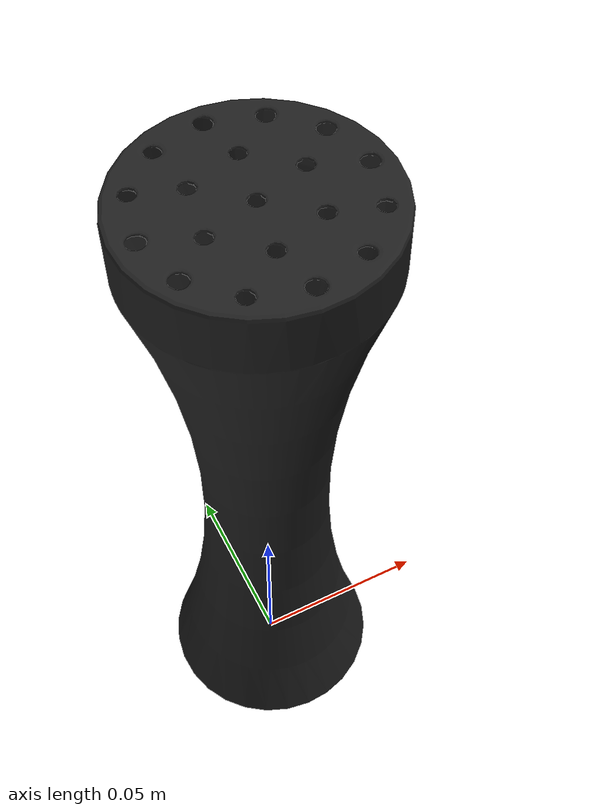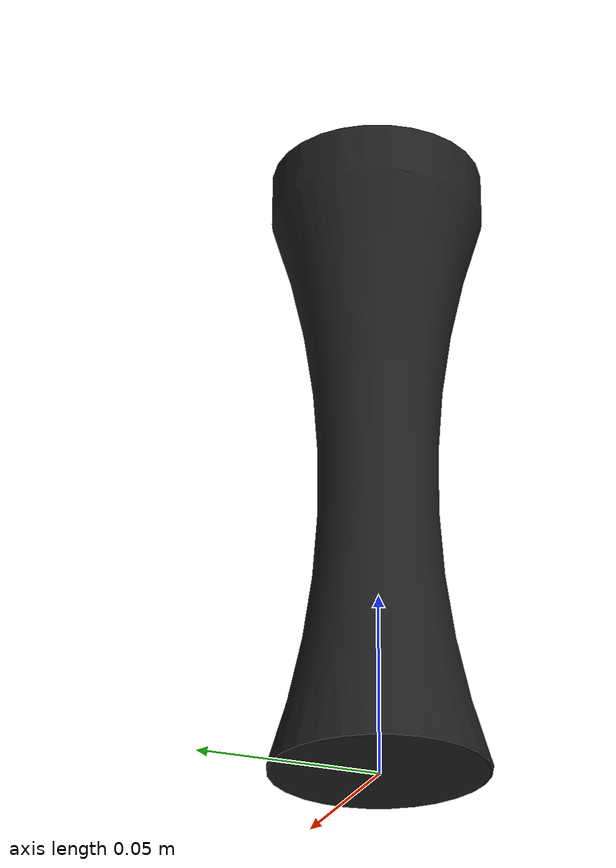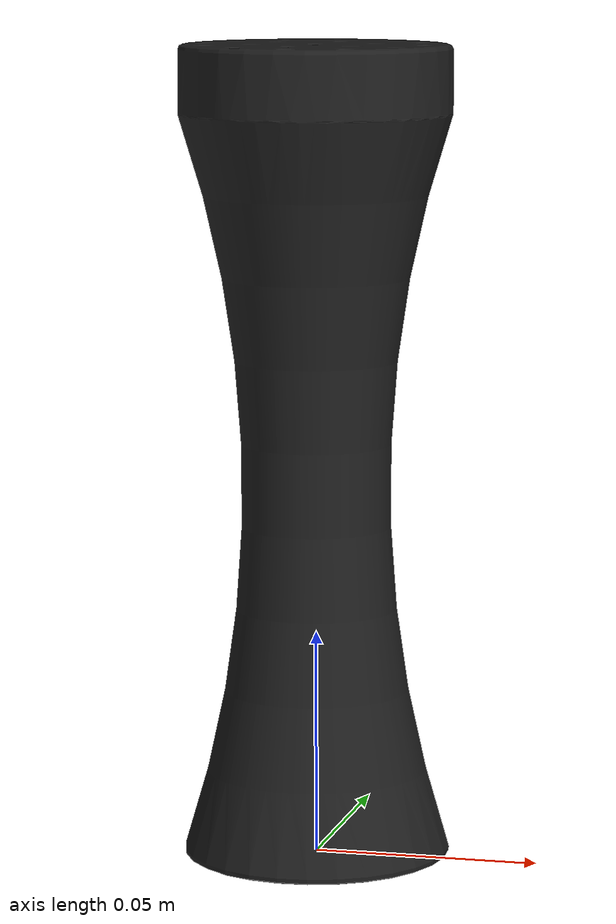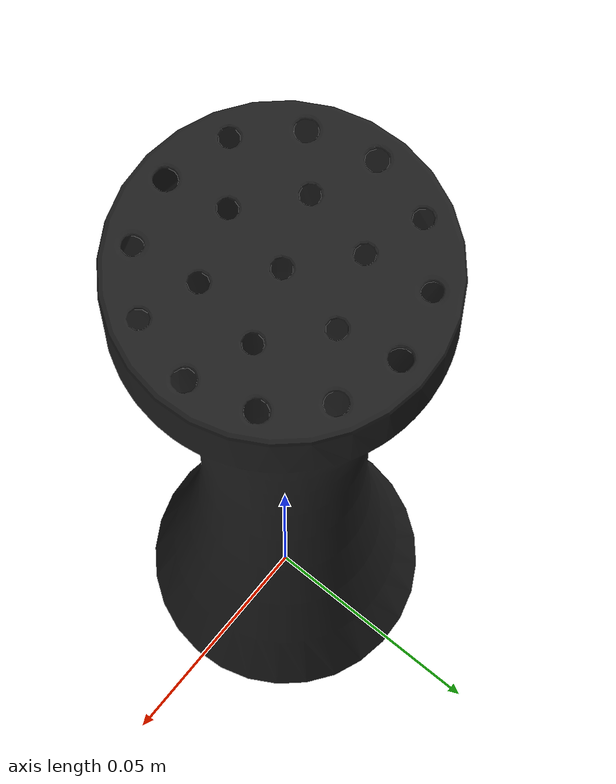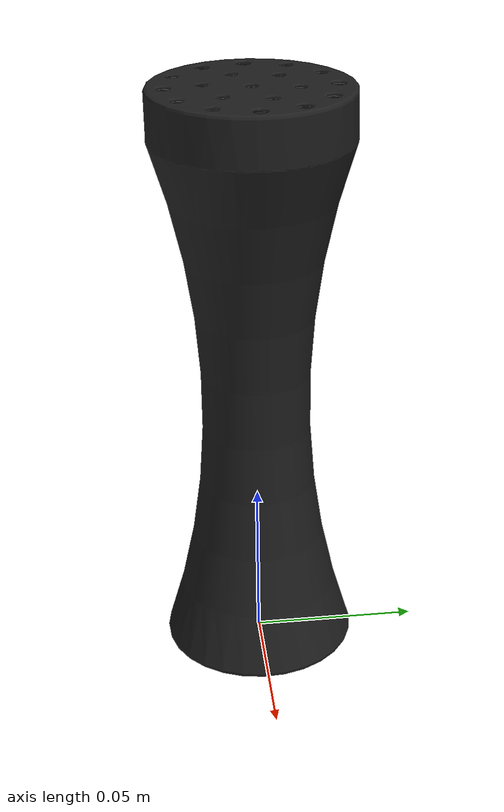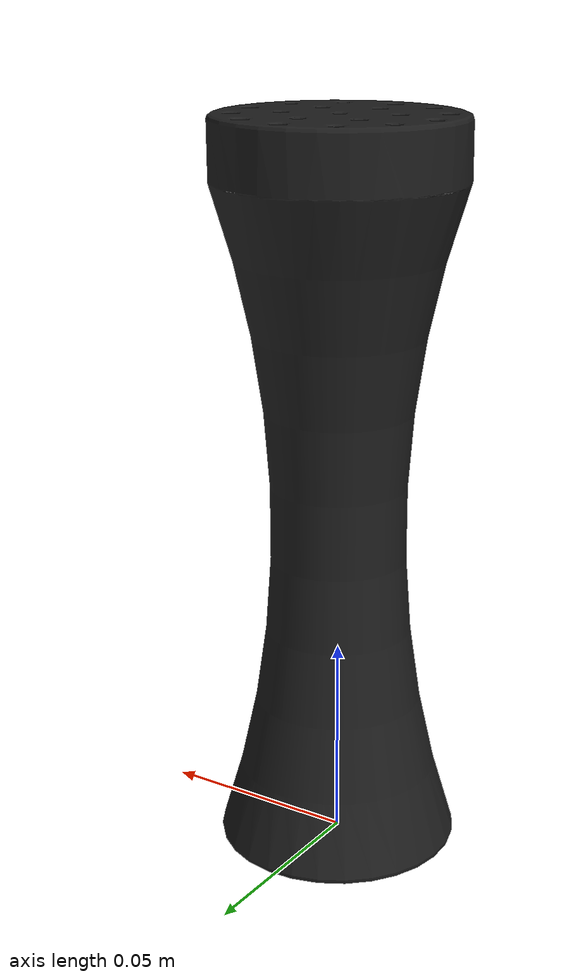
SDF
<?xml version='1.0'?>
<sdf version="1.5">
  <model name="saltshaker"> <!-- Very important to change-->
    <static>false</static>
    <pose>0 0 0 0 0 0</pose> <!-- Translation: X Y Z and Rotation: Roll Pitch Yaw (In Radian)-->
    <link name="body">

    <inertial>
      <mass>0.024</mass>
      <pose>-0.000779948 -0.001 88.334 0 0 0</pose>
        <inertia>
        <ixx>1.22e-4</ixx>
        <ixy>-5.2e-8</ixy>
        <ixz>3.51e-9</ixz>
        <iyy>4.29e-6</iyy>
        <iyz>1.39e-5</iyz>
        <izz>1.22e-4</izz>
      </inertia>
    </inertial>

       <collision name="collision"> <!-- You can use mesh like below -->
        <geometry>
          <mesh>
             <uri>/home/sorox23/robotic_ws/master_thesis_ws/src/property_based_tester/environment/models/saltshaker/meshes/saltshaker.stl</uri>
             <scale>0.001 0.001 0.001</scale>
          </mesh>
        </geometry>
      </collision>

      <visual name="visual">
        <geometry>
          <mesh>
             <uri>/home/sorox23/robotic_ws/master_thesis_ws/src/property_based_tester/environment/models/saltshaker/meshes/saltshaker.stl</uri>
             <scale>0.001 0.001 0.001</scale>
          </mesh>
        </geometry>

        <material>
          <script>
             <uri>/home/sorox23/robotic_ws/master_thesis_ws/src/property_based_tester/environment/models/saltshaker/materials/scripts</uri>
             <uri>/home/sorox23/robotic_ws/master_thesis_ws/src/property_based_tester/environment/models/saltshaker/materials/textures</uri>
             <name>Gazebo/FlatBlack</name>
          </script>
        </material>
      </visual>
    </link>
  </model>
</sdf>
